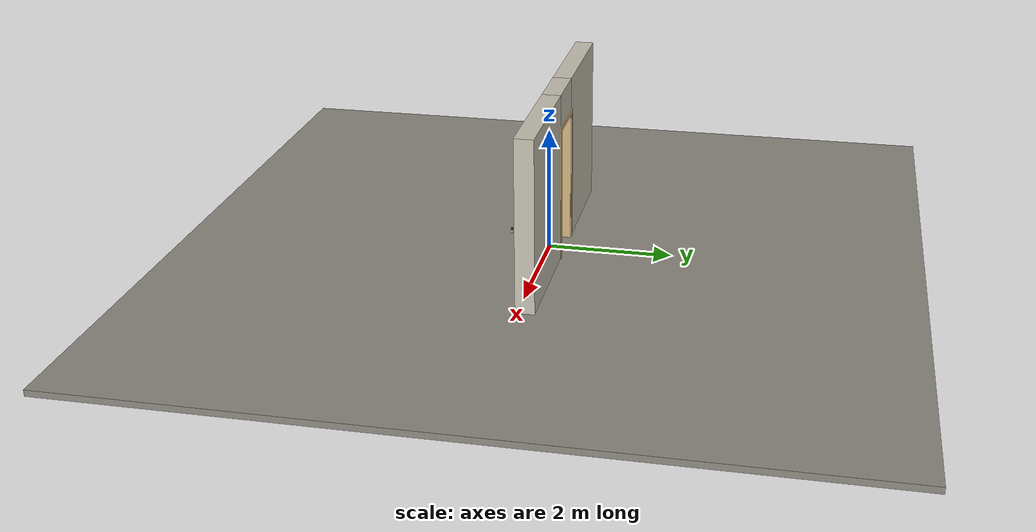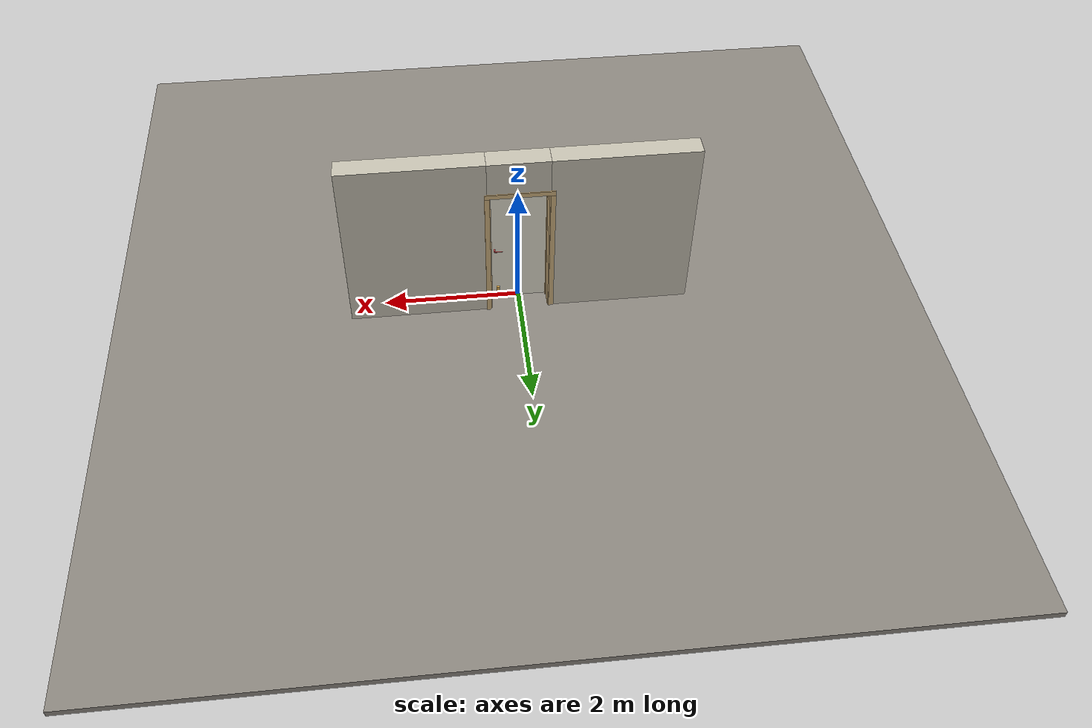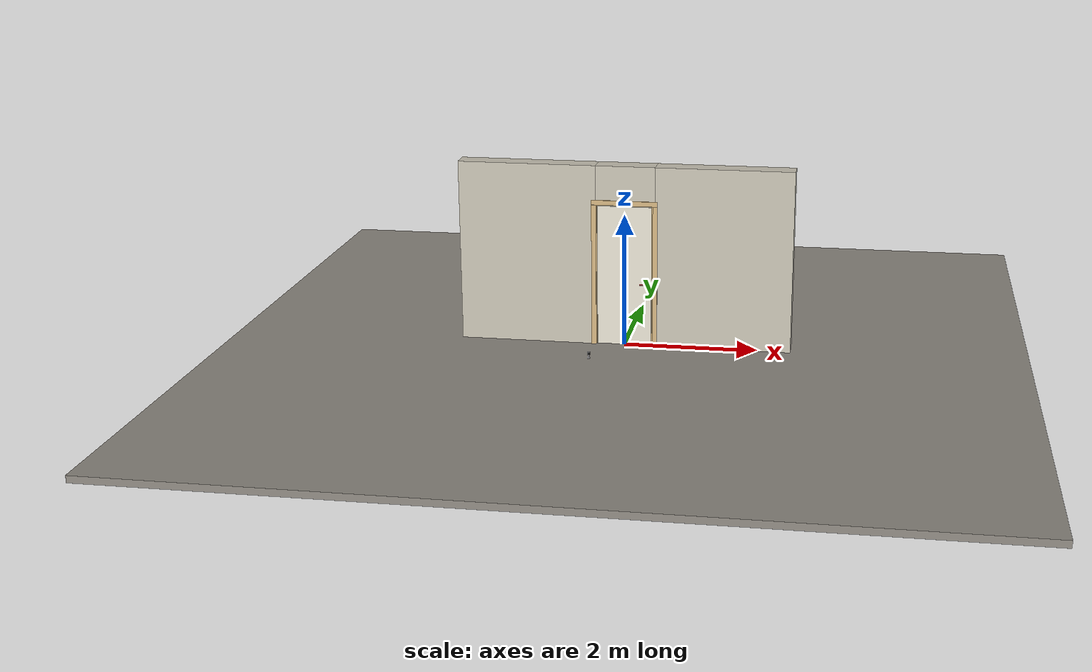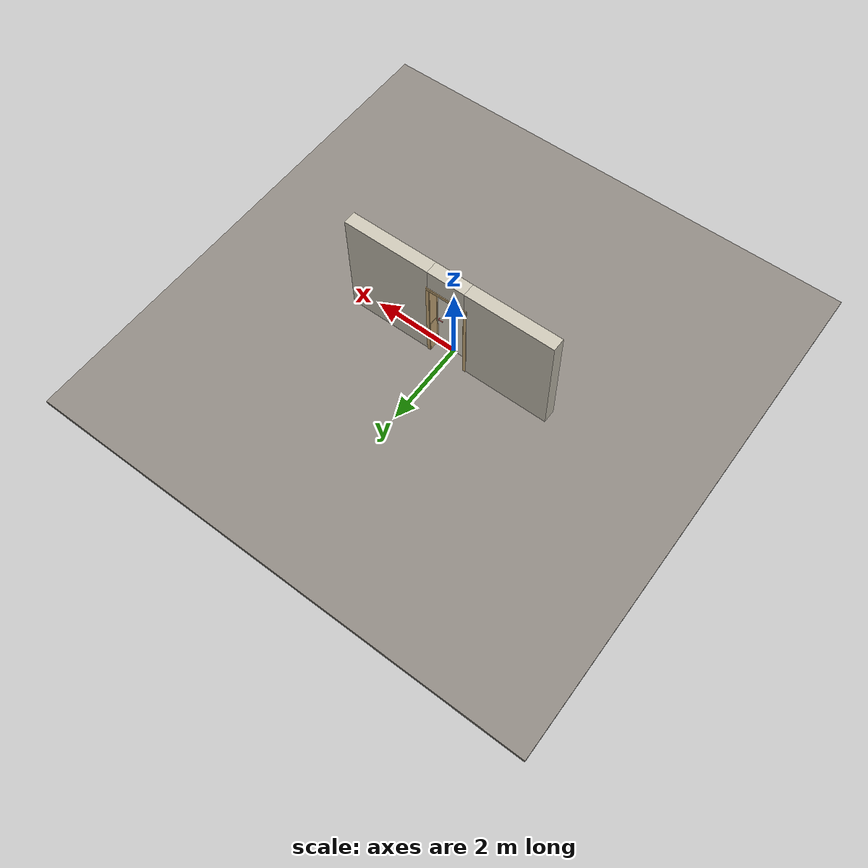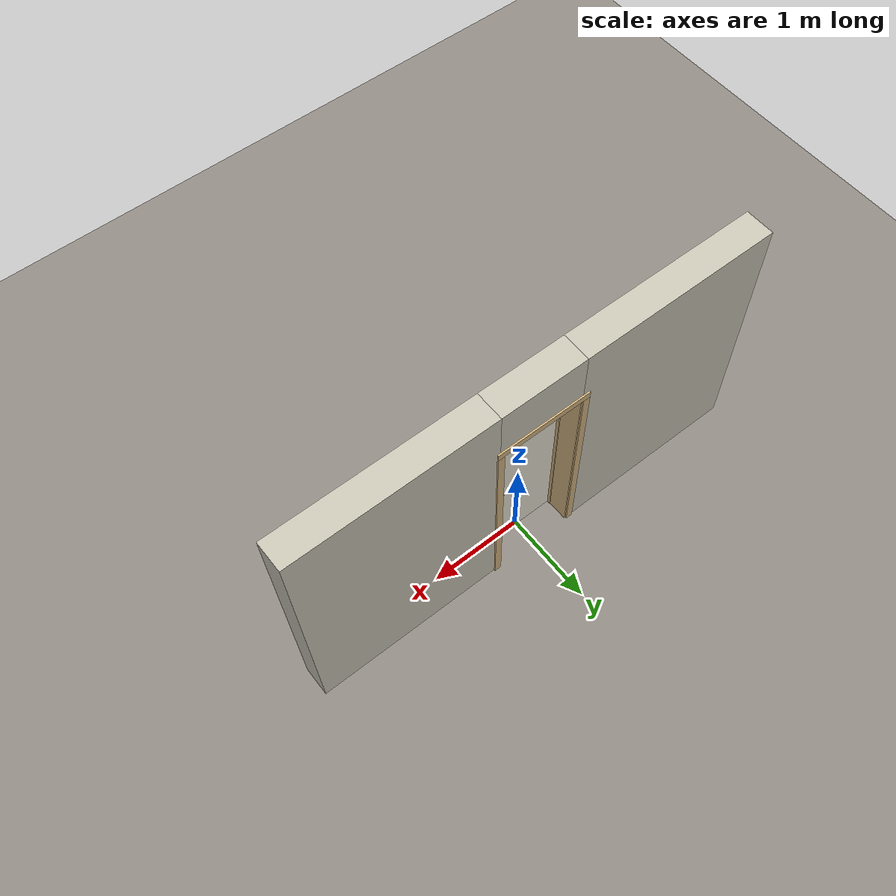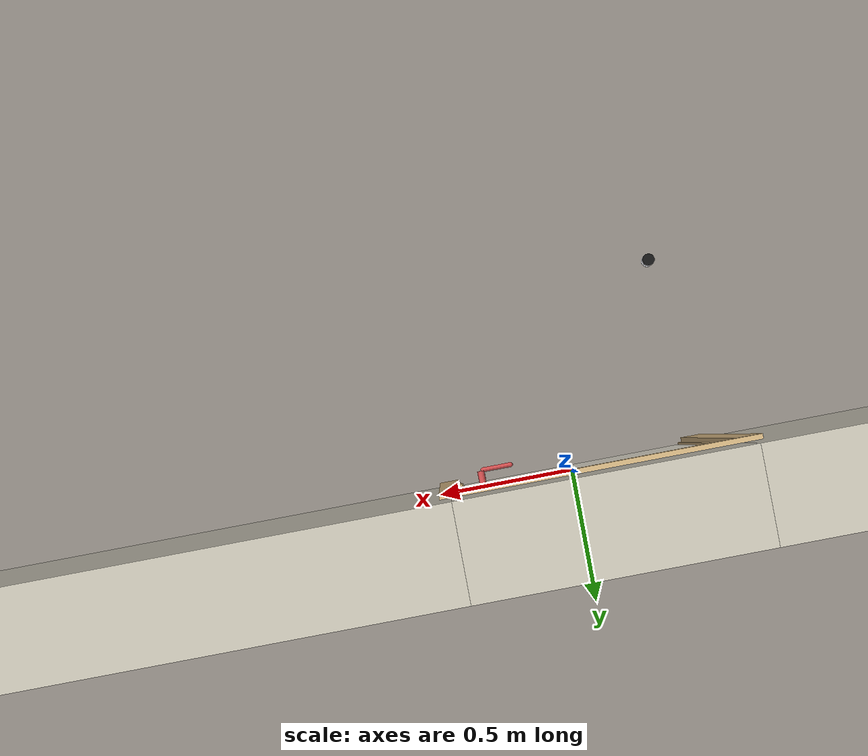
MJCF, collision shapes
<?xml version="1.0" ?>
<mujoco model="db0848_swing_single_full">
  <compiler angle="radian" meshdir="../../hardware" texturedir="../../textures" autolimits="true" inertiafromgeom="false"/>
  <option timestep="0.002" integrator="implicitfast" cone="elliptic" impratio="10" noslip_iterations="3">
    <flag multiccd="enable"/>
  </option>
  <size memory="16M"/>
  <default>
    <geom condim="4" solref="0.005 1" solimp="0.95 0.99 0.001"/>
    <joint solreflimit="0.005 1" solimplimit="0.95 0.99 0.001"/>
    <tendon solreflimit="0.005 1"/>
    <equality solref="0.002 1"/>
  </default>
  <visual>
    <headlight ambient="0.4 0.4 0.4" diffuse="0.7 0.7 0.7" specular="0.2 0.2 0.2"/>
    <quality shadowsize="4096"/>
    <map znear="0.01" zfar="60"/>
  </visual>
  <asset>
    <mesh name="hinge_9ae1f9b7de" file="hinge_9ae1f9b7de.obj"/>
    <mesh name="hinge_jamb_50e97ebc96" file="hinge_jamb_50e97ebc96.obj"/>
    <mesh name="lever_748f08efca" file="lever_748f08efca.obj"/>
    <material name="mat_floor" rgba="0.55 0.53 0.5 1" specular="0.2" shininess="0.15" reflectance="0"/>
    <material name="mat_wall" rgba="0.78 0.76 0.7 1" specular="0.2" shininess="0.1" reflectance="0"/>
    <material name="mat_leaf" rgba="0.9 0.88 0.82 1" specular="0.2" shininess="0.5" reflectance="0"/>
    <material name="mat_hinge" rgba="0.65 0.66 0.68 1" specular="0.74" shininess="0.5" reflectance="0.36"/>
    <material name="mat_op_chrome" rgba="0.9 0.9 0.92 1" specular="0.8" shininess="0.9" reflectance="0.4"/>
    <material name="mat_trim" rgba="0.85 0.66 0.3 1" specular="0.8" shininess="0.75" reflectance="0.4"/>
    <material name="mat_bolt" rgba="0.85 0.66 0.3 1" specular="0.8" shininess="0.75" reflectance="0.4"/>
    <material name="mat_frame" rgba="0.82 0.7 0.5 1" specular="0.2" shininess="0.45" reflectance="0"/>
    <material name="mat_kickdown" rgba="0.85 0.66 0.3 1" specular="0.8" shininess="0.75" reflectance="0.4"/>
    <material name="mat_kickdown_pad" rgba="0.92 0.92 0.9 1" specular="0.2" shininess="0.6" reflectance="0"/>
    <material name="mat_bumper_stop" rgba="0.08 0.08 0.08 1" specular="0.2" shininess="0.1" reflectance="0"/>
    <material name="mat_stop_base" rgba="0.9 0.9 0.92 1" specular="0.8" shininess="0.9" reflectance="0.4"/>
    <texture name="skybox" type="skybox" builtin="gradient" rgb1="0.6 0.7 0.85" rgb2="0.9 0.92 0.95" width="256" height="256"/>
  </asset>
  <worldbody>
    <light name="sun" pos="1.5 -2.5 4" dir="-0.3 0.5 -0.8" directional="true" diffuse="0.8 0.8 0.8" specular="0.3 0.3 0.3" castshadow="true"/>
    <light name="fill" pos="-1.5 2.5 3" dir="0.3 -0.5 -0.7" directional="true" diffuse="0.35 0.35 0.4" castshadow="false"/>
    <camera name="robot_view" pos="0 -2.516812 1.812087" xyaxes="1 0 0 0 0.26963 0.962964" fovy="52"/>
    <camera name="far_view" pos="0 2.758812 1.812087" xyaxes="-1 0 0 0 -0.26963 0.962964" fovy="52"/>
    <camera name="iso" pos="2.004737 -2.094762 2.234138" xyaxes="0.741536 0.670913 0 -0.242917 0.268487 0.932151" fovy="46"/>
    <camera name="detail_handle" pos="0.4359 -0.877 1.245" xyaxes="0.97561 0.219512 0 -0.070934 0.315262 0.94635" fovy="38"/>
    <geom name="floor" type="box" size="6 6 0.05" pos="0 0 -0.05" material="mat_floor" group="0" contype="1" conaffinity="1" friction="0.8 0.005 0.0001" density="2400"/>
    <geom name="wall_left" type="box" size="1.03525 0.15 1.3735" pos="-1.46475 0.121 1.3735" material="mat_wall" group="0" contype="1" conaffinity="1" friction="0.6 0.005 0.0001" density="800"/>
    <geom name="wall_right" type="box" size="1.02025 0.15 1.3735" pos="1.47975 0.121 1.3735" material="mat_wall" group="0" contype="1" conaffinity="1" friction="0.6 0.005 0.0001" density="800"/>
    <geom name="wall_header" type="box" size="0.4445 0.15 0.2755" pos="0.015 0.121 2.4715" material="mat_wall" group="0" contype="1" conaffinity="1" friction="0.6 0.005 0.0001" density="800"/>
    <geom name="hinge_0_jamb" type="mesh" mesh="hinge_jamb_50e97ebc96" pos="-0.4075 -0.029 0.259" material="mat_hinge" group="1" contype="0" conaffinity="0" density="7850"/>
    <geom name="hinge_1_jamb" type="mesh" mesh="hinge_jamb_50e97ebc96" pos="-0.4075 -0.029 1.076" material="mat_hinge" group="1" contype="0" conaffinity="0" density="7850"/>
    <geom name="hinge_2_jamb" type="mesh" mesh="hinge_jamb_50e97ebc96" pos="-0.4075 -0.029 1.963" material="mat_hinge" group="1" contype="0" conaffinity="0" density="7850"/>
    <geom name="jamb_hinge" type="box" size="0.0095 0.15 1.0735" pos="-0.42 0.121 1.0735" material="mat_frame" group="0" contype="1" conaffinity="1" friction="0.6 0.005 0.0001" density="400"/>
    <geom name="strike_965_wall_n" type="box" size="0.0245 0.131575 0.0167" pos="0.435 0.139425 0.965" material="mat_frame" group="0" contype="1" conaffinity="1" friction="0.6 0.005 0.0001" density="400"/>
    <geom name="strike_965_wall_p" type="box" size="0.0245 0.008 0.0167" pos="0.435 -0.01585 0.965" material="mat_frame" group="0" contype="1" conaffinity="1" friction="0.6 0.005 0.0001" density="400"/>
    <geom name="strike_965_ramp" type="box" size="0.0245 0.01649 0.0167" pos="0.439636 -0.028673 0.965" quat="0.977148 0 0 0.212558" material="mat_frame" group="0" contype="1" conaffinity="1" friction="0.12 0.005 0.0001" density="400"/>
    <geom name="strike_965_back" type="box" size="0.01615 0.00785 0.0167" pos="0.44335 0 0.965" material="mat_frame" group="0" contype="1" conaffinity="1" friction="0.6 0.005 0.0001" density="400"/>
    <geom name="jamb_strike_0" type="box" size="0.0245 0.15 0.47415" pos="0.435 0.121 0.47415" material="mat_frame" group="0" contype="1" conaffinity="1" friction="0.6 0.005 0.0001" density="400"/>
    <geom name="jamb_strike_1" type="box" size="0.0245 0.15 0.58265" pos="0.435 0.121 1.56435" material="mat_frame" group="0" contype="1" conaffinity="1" friction="0.6 0.005 0.0001" density="400"/>
    <geom name="jamb_head" type="box" size="0.4445 0.15 0.0095" pos="0.015 0.121 2.1565" material="mat_frame" group="0" contype="1" conaffinity="1" friction="0.6 0.005 0.0001" density="400"/>
    <geom name="head_stud" type="box" size="0.4445 0.15 0.015" pos="0.015 0.121 2.181" material="mat_wall" group="0" contype="1" conaffinity="1" friction="0.6 0.005 0.0001" density="500"/>
    <geom name="stop_hinge" type="box" size="0.0055 0.016 1.0735" pos="-0.405 0.0385 1.0735" material="mat_frame" group="0" contype="1" conaffinity="1" friction="0.6 0.005 0.0001" density="400"/>
    <geom name="stop_strike" type="box" size="0.0055 0.016 1.0735" pos="0.405 0.0385 1.0735" material="mat_frame" group="0" contype="1" conaffinity="1" friction="0.6 0.005 0.0001" density="400"/>
    <geom name="stop_head" type="box" size="0.4105 0.016 0.0055" pos="0 0.0385 2.1415" material="mat_frame" group="0" contype="1" conaffinity="1" friction="0.6 0.005 0.0001" density="400"/>
    <geom name="casing_l_n" type="box" size="0.035 0.008 1.083" pos="-0.4595 -0.037 1.0735" material="mat_frame" group="2" contype="0" conaffinity="0" density="400"/>
    <geom name="casing_r_n" type="box" size="0.035 0.008 1.083" pos="0.4595 -0.037 1.0735" material="mat_frame" group="2" contype="0" conaffinity="0" density="400"/>
    <geom name="casing_h_n" type="box" size="0.4945 0.008 0.035" pos="0 -0.037 2.196" material="mat_frame" group="2" contype="0" conaffinity="0" density="400"/>
    <geom name="casing_l_p" type="box" size="0.035 0.008 1.083" pos="-0.4595 0.279 1.0735" material="mat_frame" group="2" contype="0" conaffinity="0" density="400"/>
    <geom name="casing_r_p" type="box" size="0.035 0.008 1.083" pos="0.4595 0.279 1.0735" material="mat_frame" group="2" contype="0" conaffinity="0" density="400"/>
    <geom name="casing_h_p" type="box" size="0.4945 0.008 0.035" pos="0 0.279 2.196" material="mat_frame" group="2" contype="0" conaffinity="0" density="400"/>
    <geom name="door_stop_base" type="cylinder" size="0.022 0.003" pos="-0.4235 -0.72005 0.003" material="mat_stop_base" group="0" contype="1" conaffinity="1" friction="0.6 0.005 0.0001" density="7850"/>
    <geom name="door_stop_post" type="cylinder" size="0.012 0.0245" pos="-0.4235 -0.72005 0.0305" material="mat_stop_base" group="0" contype="1" conaffinity="1" friction="0.6 0.005 0.0001" density="7850"/>
    <geom name="door_stop_bumper" type="cylinder" size="0.022 0.02" pos="-0.4235 -0.72005 0.075" material="mat_bumper_stop" group="0" contype="1" conaffinity="1" friction="0.6 0.005 0.0001" density="1100"/>
    <site name="approach_point" pos="0 -1.5 0" quat="1 0 0 0" size="0.05" rgba="0.2 0.9 0.2 0.5" group="4"/>
    <site name="goal_point" pos="0 1.5 0" quat="1 0 0 0" size="0.05" rgba="0.2 0.9 0.2 0.5" group="4"/>
    <site name="door_plane_center" pos="0 0 1.0735" quat="1 0 0 0" size="0.02" rgba="0.2 0.9 0.2 0.5" group="4"/>
    <body name="leaf" pos="-0.4105 0 0">
      <inertial pos="0.414753 0.000781 1.052961" mass="51.230306" quat="-0.496706 0.4927 0.506177 0.504296" diaginertia="2.910471553 20.063311509 22.954004423"/>
      <joint name="leaf_hinge" type="hinge" axis="0 0 -1" pos="0.003 -0.029 0" limited="true" range="0 1.570796" damping="0.218374" frictionloss="0.510946" armature="0.02"/>
      <geom name="leaf_slab" type="box" size="0.4065 0.022 1.067" pos="0.4095 0 1.076" material="mat_leaf" group="0" contype="1" conaffinity="1" friction="0.4 0.005 0.0001" density="1"/>
      <geom name="hinge_0" type="mesh" mesh="hinge_9ae1f9b7de" pos="0.003 -0.029 0.259" material="mat_hinge" group="1" contype="0" conaffinity="0" density="7850"/>
      <geom name="hinge_1" type="mesh" mesh="hinge_9ae1f9b7de" pos="0.003 -0.029 1.076" material="mat_hinge" group="1" contype="0" conaffinity="0" density="7850"/>
      <geom name="hinge_2" type="mesh" mesh="hinge_9ae1f9b7de" pos="0.003 -0.029 1.963" material="mat_hinge" group="1" contype="0" conaffinity="0" density="7850"/>
      <geom name="leaf_latch_bolt_faceplate" type="box" size="0.0006 0.01235 0.0267" pos="0.8154 0 0.965" material="mat_bolt" group="1" contype="0" conaffinity="0" density="8500"/>
      <geom name="kickdown_housing" type="box" size="0.022 0.016 0.045" pos="0.716 0.038 0.169" material="mat_kickdown" group="2" contype="0" conaffinity="0" density="8500"/>
      <geom name="kickdown_arm" type="box" size="0.012 0.006 0.045" pos="0.716 0.034 0.104" material="mat_kickdown" group="2" contype="0" conaffinity="0" density="8500"/>
      <geom name="kickdown_pad" type="cylinder" size="0.014 0.006" pos="0.716 0.034 0.061" material="mat_kickdown_pad" group="2" contype="0" conaffinity="0" density="1200"/>
      <site name="leaf_edge_mid" pos="0.816 0 1.067" quat="1 0 0 0" size="0.02" rgba="0.2 0.9 0.2 0.5" group="4"/>
      <body name="leaf_handle" pos="0.756 0 0.965">
        <inertial pos="-0.024187 0 0" mass="0.847798" quat="0.707107 0 0 -0.707107" diaginertia="0.00118733 0.003222067 0.004272567"/>
        <joint name="leaf_handle_hinge" type="hinge" axis="0 -1 0" limited="true" range="0 0.87" damping="0.205085" frictionloss="0.04" stiffness="0.9" springref="-0.444444" armature="0.01"/>
        <geom name="leaf_handle_spindle" type="cylinder" size="0.006 0.03" pos="0 0 0" quat="0.707107 -0.707107 0 0" material="mat_op_chrome" group="1" contype="0" conaffinity="0" density="7850"/>
        <geom name="leaf_handle_lever_n" type="mesh" mesh="lever_748f08efca" pos="0 -0.022 0" quat="0.707107 0.707107 0 0" material="mat_op_chrome" group="1" contype="0" conaffinity="0" density="3000"/>
        <geom name="leaf_handle_lever_col_n" type="capsule" size="0.008 0.048" pos="-0.056 -0.077 0" quat="0.707107 0 -0.707107 0" material="mat_op_chrome" group="3" contype="1" conaffinity="1" rgba="0.8 0.3 0.3 0.25" friction="0.7 0.01 0.0001" density="3000"/>
        <geom name="leaf_handle_hub_col_n" type="cylinder" size="0.012 0.022" pos="0 -0.052 0" quat="0.707107 -0.707107 0 0" material="mat_op_chrome" group="3" contype="1" conaffinity="1" rgba="0.8 0.3 0.3 0.25" friction="0.6 0.005 0.0001" density="3000"/>
        <geom name="leaf_handle_lever_p" type="mesh" mesh="lever_748f08efca" pos="0 0.022 0" quat="-0.707107 0.707107 0 0" material="mat_op_chrome" group="1" contype="0" conaffinity="0" density="3000"/>
        <geom name="leaf_handle_lever_col_p" type="capsule" size="0.008 0.048" pos="-0.056 0.077 0" quat="0.707107 0 -0.707107 0" material="mat_op_chrome" group="3" contype="1" conaffinity="1" rgba="0.8 0.3 0.3 0.25" friction="0.7 0.01 0.0001" density="3000"/>
        <geom name="leaf_handle_hub_col_p" type="cylinder" size="0.012 0.022" pos="0 0.052 0" quat="0.707107 -0.707107 0 0" material="mat_op_chrome" group="3" contype="1" conaffinity="1" rgba="0.8 0.3 0.3 0.25" friction="0.6 0.005 0.0001" density="3000"/>
        <site name="leaf_handle_grip_n" pos="-0.0896 -0.077 0" quat="1 0 0 0" size="0.012" rgba="0.2 0.9 0.2 0.5" group="4"/>
        <site name="leaf_handle_grip_p" pos="-0.0896 0.077 0" quat="1 0 0 0" size="0.012" rgba="0.2 0.9 0.2 0.5" group="4"/>
      </body>
      <body name="leaf_latch_bolt" pos="0.816 0 0.965">
        <inertial pos="-0.00865 0 0" mass="0.041419" quat="0.92388 -0.382683 0 0" diaginertia="0.000000798 0.000005598 0.000005598"/>
        <joint name="leaf_latch_bolt_slide" type="slide" axis="-1 0 0" limited="true" range="0 0.0127" damping="2" frictionloss="0.3" stiffness="300" springref="-0.008333" armature="0.1"/>
        <geom name="leaf_latch_bolt_capsule" type="capsule" size="0.00635 0.015" pos="-0.00865 0 0" quat="0.707107 0 0.707107 0" material="mat_bolt" group="0" contype="1" conaffinity="1" friction="0.2 0.005 0.0001" density="8500"/>
      </body>
    </body>
  </worldbody>
  <tendon>
    <fixed name="leaf_latch_bolt_coupling" limited="true" range="0 10">
      <joint joint="leaf_latch_bolt_slide" coef="1"/>
      <joint joint="leaf_handle_hinge" coef="-0.016076"/>
    </fixed>
  </tendon>
  <sensor>
    <jointpos name="leaf_hinge_pos" joint="leaf_hinge"/>
    <jointvel name="leaf_hinge_vel" joint="leaf_hinge"/>
    <jointpos name="leaf_handle_hinge_pos" joint="leaf_handle_hinge"/>
    <jointvel name="leaf_handle_hinge_vel" joint="leaf_handle_hinge"/>
    <jointpos name="leaf_latch_bolt_slide_pos" joint="leaf_latch_bolt_slide"/>
    <jointvel name="leaf_latch_bolt_slide_vel" joint="leaf_latch_bolt_slide"/>
  </sensor>
</mujoco>
